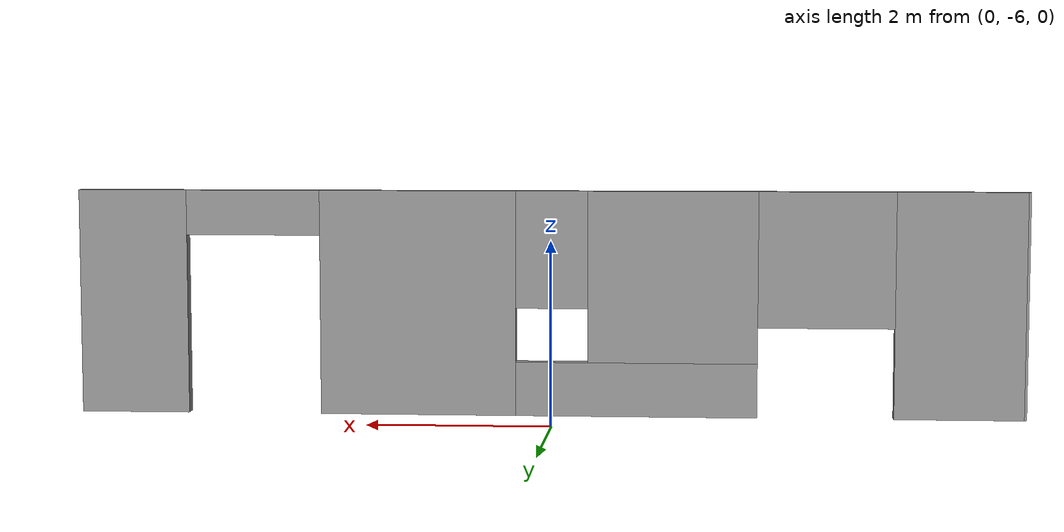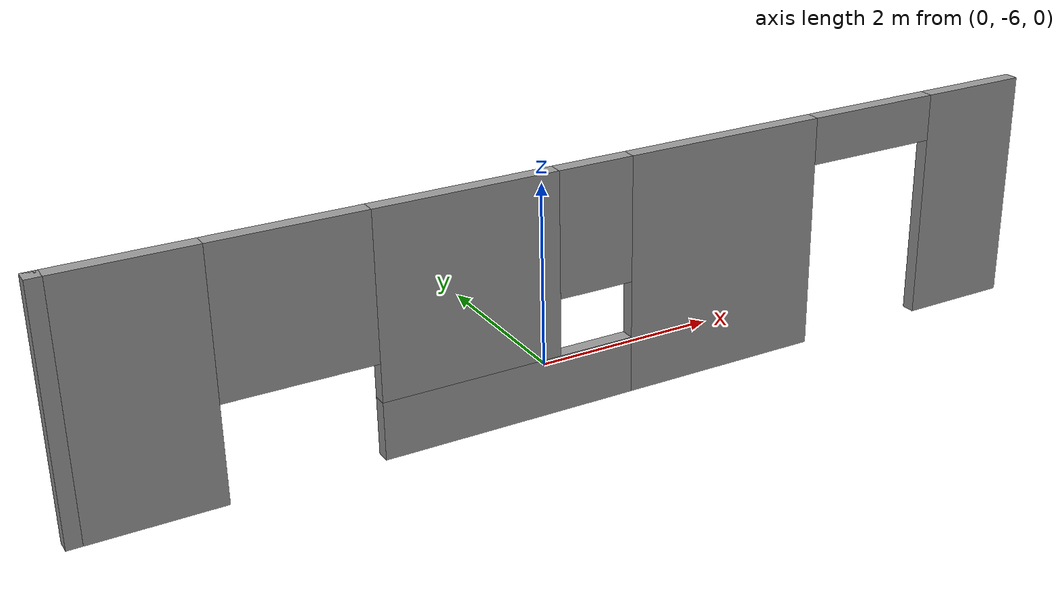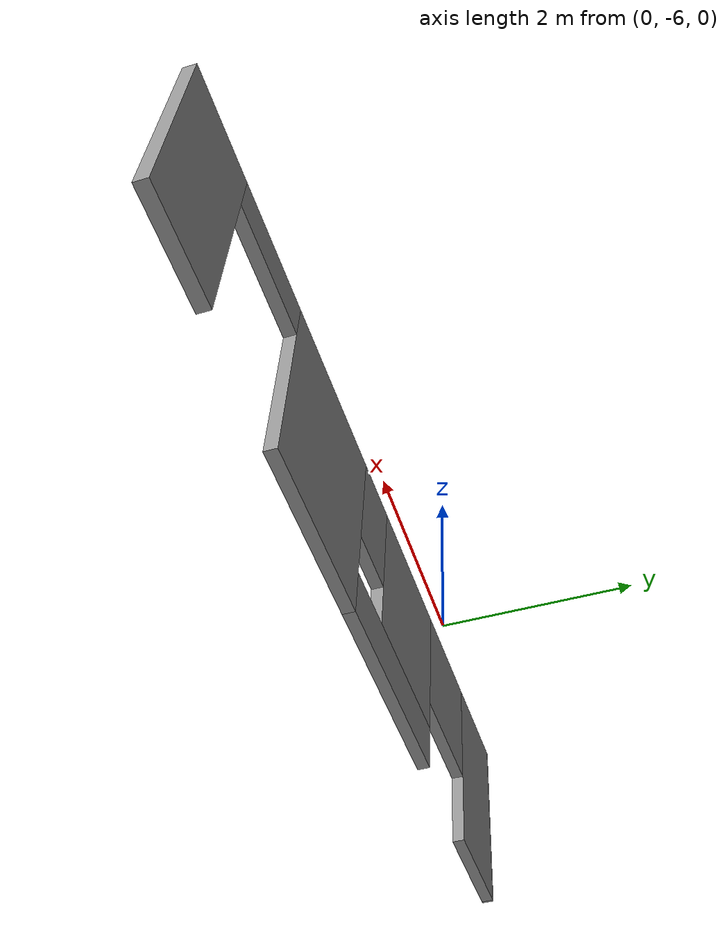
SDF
<?xml version='1.0'?>
<sdf version='1.6'>
  <model name='varying_doors2'>
    <pose frame=''>0.100084 -6.89082 0 0 -0 0</pose>
    <link name='Wall_7'>
      <pose frame=''>0.01315 0 0 0 -0 3.14159</pose>
      <visual name='Wall_7_Visual_0'>
        <pose frame=''>-4.64084 0 1.25 0 -0 0</pose>
        <geometry>
          <box>
            <size>1.21832 0.15 2.5</size>
          </box>
        </geometry>
        <material>
          <script>
            <uri>file://media/materials/scripts/gazebo.material</uri>
            <name>Gazebo/Grey</name>
          </script>
          <ambient>1 1 1 1</ambient>
        </material>
      </visual>
      <collision name='Wall_7_Collision_0'>
        <geometry>
          <box>
            <size>1.21832 0.15 2.5</size>
          </box>
        </geometry>
        <pose frame=''>-4.64084 0 1.25 0 -0 0</pose>
      </collision>
      <visual name='Wall_7_Visual_1'>
        <pose frame=''>-1.43659 0 1.25 0 -0 0</pose>
        <geometry>
          <box>
            <size>2.19018 0.15 2.5</size>
          </box>
        </geometry>
        <material>
          <script>
            <uri>file://media/materials/scripts/gazebo.material</uri>
            <name>Gazebo/Grey</name>
          </script>
          <ambient>1 1 1 1</ambient>
        </material>
      </visual>
      <collision name='Wall_7_Collision_1'>
        <geometry>
          <box>
            <size>2.19018 0.15 2.5</size>
          </box>
        </geometry>
        <pose frame=''>-1.43659 0 1.25 0 -0 0</pose>
      </collision>
      <visual name='Wall_7_Visual_2'>
        <pose frame=''>4.54154 0 1.25 0 -0 0</pose>
        <geometry>
          <box>
            <size>1.41692 0.15 2.5</size>
          </box>
        </geometry>
        <material>
          <script>
            <uri>file://media/materials/scripts/gazebo.material</uri>
            <name>Gazebo/Grey</name>
          </script>
          <ambient>1 1 1 1</ambient>
        </material>
      </visual>
      <collision name='Wall_7_Collision_2'>
        <geometry>
          <box>
            <size>1.41692 0.15 2.5</size>
          </box>
        </geometry>
        <pose frame=''>4.54154 0 1.25 0 -0 0</pose>
      </collision>
      <visual name='Wall_7_Visual_3'>
        <pose frame=''>0.995794 0 0.3 0 -0 0</pose>
        <geometry>
          <box>
            <size>2.67457 0.15 0.6</size>
          </box>
        </geometry>
        <material>
          <script>
            <uri>file://media/materials/scripts/gazebo.material</uri>
            <name>Gazebo/Grey</name>
          </script>
          <ambient>1 1 1 1</ambient>
        </material>
      </visual>
      <collision name='Wall_7_Collision_3'>
        <geometry>
          <box>
            <size>2.67457 0.15 0.6</size>
          </box>
        </geometry>
        <pose frame=''>0.995794 0 0.3 0 -0 0</pose>
      </collision>
      <visual name='Wall_7_Visual_4'>
        <pose frame=''>1.39579 0 1.55 0 -0 0</pose>
        <geometry>
          <box>
            <size>1.87458 0.15 1.9</size>
          </box>
        </geometry>
        <material>
          <script>
            <uri>file://media/materials/scripts/gazebo.material</uri>
            <name>Gazebo/Grey</name>
          </script>
          <ambient>1 1 1 1</ambient>
        </material>
      </visual>
      <collision name='Wall_7_Collision_4'>
        <geometry>
          <box>
            <size>1.87458 0.15 1.9</size>
          </box>
        </geometry>
        <pose frame=''>1.39579 0 1.55 0 -0 0</pose>
      </collision>
      <visual name='Wall_7_Visual_5'>
        <pose frame=''>3.08308 0 1.75 0 -0 0</pose>
        <geometry>
          <box>
            <size>1.5 0.15 1.5</size>
          </box>
        </geometry>
        <material>
          <script>
            <uri>file://media/materials/scripts/gazebo.material</uri>
            <name>Gazebo/Grey</name>
          </script>
          <ambient>1 1 1 1</ambient>
        </material>
      </visual>
      <collision name='Wall_7_Collision_5'>
        <geometry>
          <box>
            <size>1.5 0.15 1.5</size>
          </box>
        </geometry>
        <pose frame=''>3.08308 0 1.75 0 -0 0</pose>
      </collision>
      <visual name='Wall_7_Visual_6'>
        <pose frame=''>0.058506 0 1.85 0 -0 0</pose>
        <geometry>
          <box>
            <size>0.8 0.15 1.3</size>
          </box>
        </geometry>
        <material>
          <script>
            <uri>file://media/materials/scripts/gazebo.material</uri>
            <name>Gazebo/Grey</name>
          </script>
          <ambient>1 1 1 1</ambient>
        </material>
      </visual>
      <collision name='Wall_7_Collision_6'>
        <geometry>
          <box>
            <size>0.8 0.15 1.3</size>
          </box>
        </geometry>
        <pose frame=''>0.058506 0 1.85 0 -0 0</pose>
      </collision>
      <visual name='Wall_7_Visual_7'>
        <pose frame=''>-3.28168 0 2.25 0 -0 0</pose>
        <geometry>
          <box>
            <size>1.5 0.15 0.5</size>
          </box>
        </geometry>
        <material>
          <script>
            <uri>file://media/materials/scripts/gazebo.material</uri>
            <name>Gazebo/Grey</name>
          </script>
          <ambient>1 1 1 1</ambient>
        </material>
      </visual>
      <collision name='Wall_7_Collision_7'>
        <geometry>
          <box>
            <size>1.5 0.15 0.5</size>
          </box>
        </geometry>
        <pose frame=''>-3.28168 0 2.25 0 -0 0</pose>
      </collision>
    </link>
    <link name='Wall_8'>
      <collision name='Wall_8_Collision'>
        <geometry>
          <box>
            <size>0.15 0.15 2.5</size>
          </box>
        </geometry>
        <pose frame=''>0 0 1.25 0 -0 0</pose>
      </collision>
      <visual name='Wall_8_Visual'>
        <pose frame=''>0 0 1.25 0 -0 0</pose>
        <geometry>
          <box>
            <size>0.15 0.15 2.5</size>
          </box>
        </geometry>
        <material>
          <script>
            <uri>file://media/materials/scripts/gazebo.material</uri>
            <name>Gazebo/Grey</name>
          </script>
          <ambient>1 1 1 1</ambient>
        </material>
      </visual>
      <pose frame=''>-5.18815 0 0 0 -0 0</pose>
    </link>
    <static>1</static>
  </model>
</sdf>
